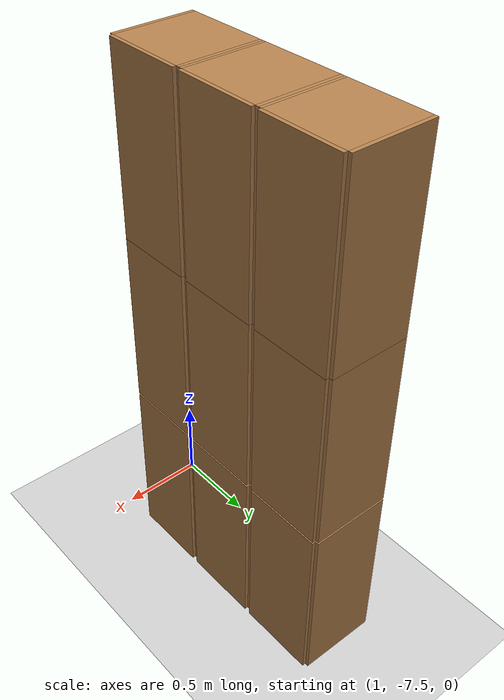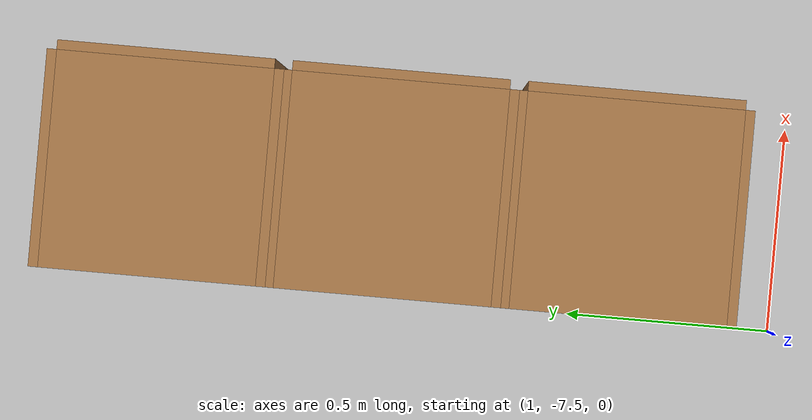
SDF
<sdf version="1.6">
 <world name="default">
  <model name="ground_plane">
   <static>1</static>
   <link name="link">
    <collision name="collision">
     <geometry><plane><normal>0 0 1</normal><size>100 100</size></plane></geometry>
     <surface>
      <contact><collide_bitmask>65535</collide_bitmask></contact>
      <friction><ode><mu>100</mu><mu2>50</mu2></ode></friction>
     </surface>
    </collision>
    <visual name="visual">
     <cast_shadows>0</cast_shadows>
     <geometry><plane><normal>0 0 1</normal><size>100 100</size></plane></geometry>
     <material>
      <script><uri>file://media/materials/scripts/gazebo.material</uri><name>Gazebo/Grey</name></script>
     </material>
    </visual>
   </link>
  </model>
  <model name="Locker18_clone_3_clone_clone_1">
   <model name="Locker18">
    <model name="Locker3">
     <model name="cabinet">
      <static>1</static>
      <link name="cabinet_bottom_plate">
       <inertial>
        <pose>0 0 -1 0 -0 0</pose>
        <inertia><ixx>2.05</ixx><ixy>0</ixy><ixz>0</ixz><iyy>2.05</iyy><iyz>0</iyz><izz>2.05</izz></inertia>
        <mass>25</mass>
       </inertial>
       <collision name="cabinet_bottom_plate_geom">
        <pose>0 0 0.01 0 -0 0</pose>
        <geometry><box><size>0.45 0.45 0.02</size></box></geometry>
       </collision>
       <visual name="cabinet_bottom_plate_geom_visual">
        <pose>0 0 0.01 0 -0 0</pose>
        <geometry><box><size>0.45 0.45 0.02</size></box></geometry>
        <material>
         <script><uri>file://media/materials/scripts/gazebo.material</uri><name>Gazebo/Wood</name></script>
        </material>
       </visual>
       <collision name="cabinet_bottom_plate_geom_cabinet_back_plate">
        <pose>0.235 0 0.51 0 -0 0</pose>
        <geometry><box><size>0.02 0.45 1.02</size></box></geometry>
       </collision>
       <visual name="cabinet_bottom_plate_geom_cabinet_back_plate_visual">
        <pose>0.235 0 0.51 0 -0 0</pose>
        <geometry><box><size>0.02 0.45 1.02</size></box></geometry>
        <material>
         <script><uri>file://media/materials/scripts/gazebo.material</uri><name>Gazebo/Wood</name></script>
        </material>
       </visual>
       <collision name="cabinet_bottom_plate_geom_cabinet_left_plate">
        <pose>0 0.235 0.51 0 -0 0</pose>
        <geometry><box><size>0.45 0.02 1.02</size></box></geometry>
       </collision>
       <visual name="cabinet_bottom_plate_geom_cabinet_left_plate_visual">
        <pose>0 0.235 0.51 0 -0 0</pose>
        <geometry><box><size>0.45 0.02 1.02</size></box></geometry>
        <material>
         <script><uri>file://media/materials/scripts/gazebo.material</uri><name>Gazebo/Wood</name></script>
        </material>
       </visual>
       <collision name="cabinet_bottom_plate_geom_cabinet_middle_plate">
        <pose>0 0 0.51 0 -0 0</pose>
        <geometry><box><size>0.45 0.45 0.02</size></box></geometry>
       </collision>
       <visual name="cabinet_bottom_plate_geom_cabinet_middle_plate_visual">
        <pose>0 0 0.51 0 -0 0</pose>
        <geometry><box><size>0.45 0.45 0.02</size></box></geometry>
        <material>
         <script><uri>file://media/materials/scripts/gazebo.material</uri><name>Gazebo/Wood</name></script>
        </material>
       </visual>
       <collision name="cabinet_bottom_plate_geom_cabinet_right_plate">
        <pose>0 -0.235 0.51 0 -0 0</pose>
        <geometry><box><size>0.45 0.02 1.02</size></box></geometry>
       </collision>
       <visual name="cabinet_bottom_plate_geom_cabinet_right_plate_visual">
        <pose>0 -0.235 0.51 0 -0 0</pose>
        <geometry><box><size>0.45 0.02 1.02</size></box></geometry>
        <material>
         <script><uri>file://media/materials/scripts/gazebo.material</uri><name>Gazebo/Wood</name></script>
        </material>
       </visual>
       <collision name="cabinet_bottom_plate_geom_cabinet_top_plate">
        <pose>0 0 1.01 0 -0 0</pose>
        <geometry><box><size>0.45 0.45 0.02</size></box></geometry>
       </collision>
       <visual name="cabinet_bottom_plate_geom_cabinet_top_plate_visual">
        <pose>0 0 1.01 0 -0 0</pose>
        <geometry><box><size>0.45 0.45 0.02</size></box></geometry>
        <material>
         <script><uri>file://media/materials/scripts/gazebo.material</uri><name>Gazebo/Wood</name></script>
        </material>
       </visual>
      </link>
      <pose>-0.676968 1.45758 0 0 -0 0</pose>
     </model>
     <model name="cabinet_clone">
      <static>1</static>
      <link name="cabinet_bottom_plate">
       <inertial>
        <pose>0 0 -1 0 -0 0</pose>
        <inertia><ixx>2.05</ixx><ixy>0</ixy><ixz>0</ixz><iyy>2.05</iyy><iyz>0</iyz><izz>2.05</izz></inertia>
        <mass>25</mass>
       </inertial>
       <collision name="cabinet_bottom_plate_geom">
        <pose>0 0 0.01 0 -0 0</pose>
        <geometry><box><size>0.45 0.45 0.02</size></box></geometry>
       </collision>
       <visual name="cabinet_bottom_plate_geom_visual">
        <pose>0 0 0.01 0 -0 0</pose>
        <geometry><box><size>0.45 0.45 0.02</size></box></geometry>
        <material>
         <script><uri>file://media/materials/scripts/gazebo.material</uri><name>Gazebo/Wood</name></script>
        </material>
       </visual>
       <collision name="cabinet_bottom_plate_geom_cabinet_back_plate">
        <pose>0.235 0 0.51 0 -0 0</pose>
        <geometry><box><size>0.02 0.45 1.02</size></box></geometry>
       </collision>
       <visual name="cabinet_bottom_plate_geom_cabinet_back_plate_visual">
        <pose>0.235 0 0.51 0 -0 0</pose>
        <geometry><box><size>0.02 0.45 1.02</size></box></geometry>
        <material>
         <script><uri>file://media/materials/scripts/gazebo.material</uri><name>Gazebo/Wood</name></script>
        </material>
       </visual>
       <collision name="cabinet_bottom_plate_geom_cabinet_left_plate">
        <pose>0 0.235 0.51 0 -0 0</pose>
        <geometry><box><size>0.45 0.02 1.02</size></box></geometry>
       </collision>
       <visual name="cabinet_bottom_plate_geom_cabinet_left_plate_visual">
        <pose>0 0.235 0.51 0 -0 0</pose>
        <geometry><box><size>0.45 0.02 1.02</size></box></geometry>
        <material>
         <script><uri>file://media/materials/scripts/gazebo.material</uri><name>Gazebo/Wood</name></script>
        </material>
       </visual>
       <collision name="cabinet_bottom_plate_geom_cabinet_middle_plate">
        <pose>0 0 0.51 0 -0 0</pose>
        <geometry><box><size>0.45 0.45 0.02</size></box></geometry>
       </collision>
       <visual name="cabinet_bottom_plate_geom_cabinet_middle_plate_visual">
        <pose>0 0 0.51 0 -0 0</pose>
        <geometry><box><size>0.45 0.45 0.02</size></box></geometry>
        <material>
         <script><uri>file://media/materials/scripts/gazebo.material</uri><name>Gazebo/Wood</name></script>
        </material>
       </visual>
       <collision name="cabinet_bottom_plate_geom_cabinet_right_plate">
        <pose>0 -0.235 0.51 0 -0 0</pose>
        <geometry><box><size>0.45 0.02 1.02</size></box></geometry>
       </collision>
       <visual name="cabinet_bottom_plate_geom_cabinet_right_plate_visual">
        <pose>0 -0.235 0.51 0 -0 0</pose>
        <geometry><box><size>0.45 0.02 1.02</size></box></geometry>
        <material>
         <script><uri>file://media/materials/scripts/gazebo.material</uri><name>Gazebo/Wood</name></script>
        </material>
       </visual>
       <collision name="cabinet_bottom_plate_geom_cabinet_top_plate">
        <pose>0 0 1.01 0 -0 0</pose>
        <geometry><box><size>0.45 0.45 0.02</size></box></geometry>
       </collision>
       <visual name="cabinet_bottom_plate_geom_cabinet_top_plate_visual">
        <pose>0 0 1.01 0 -0 0</pose>
        <geometry><box><size>0.45 0.45 0.02</size></box></geometry>
        <material>
         <script><uri>file://media/materials/scripts/gazebo.material</uri><name>Gazebo/Wood</name></script>
        </material>
       </visual>
      </link>
      <pose>-0.676968 0.970971 0 0 -0 0</pose>
     </model>
     <model name="cabinet_clone_0">
      <static>1</static>
      <link name="cabinet_bottom_plate">
       <inertial>
        <pose>0 0 -1 0 -0 0</pose>
        <inertia><ixx>2.05</ixx><ixy>0</ixy><ixz>0</ixz><iyy>2.05</iyy><iyz>0</iyz><izz>2.05</izz></inertia>
        <mass>25</mass>
       </inertial>
       <collision name="cabinet_bottom_plate_geom">
        <pose>0 0 0.01 0 -0 0</pose>
        <geometry><box><size>0.45 0.45 0.02</size></box></geometry>
       </collision>
       <visual name="cabinet_bottom_plate_geom_visual">
        <pose>0 0 0.01 0 -0 0</pose>
        <geometry><box><size>0.45 0.45 0.02</size></box></geometry>
        <material>
         <script><uri>file://media/materials/scripts/gazebo.material</uri><name>Gazebo/Wood</name></script>
        </material>
       </visual>
       <collision name="cabinet_bottom_plate_geom_cabinet_back_plate">
        <pose>0.235 0 0.51 0 -0 0</pose>
        <geometry><box><size>0.02 0.45 1.02</size></box></geometry>
       </collision>
       <visual name="cabinet_bottom_plate_geom_cabinet_back_plate_visual">
        <pose>0.235 0 0.51 0 -0 0</pose>
        <geometry><box><size>0.02 0.45 1.02</size></box></geometry>
        <material>
         <script><uri>file://media/materials/scripts/gazebo.material</uri><name>Gazebo/Wood</name></script>
        </material>
       </visual>
       <collision name="cabinet_bottom_plate_geom_cabinet_left_plate">
        <pose>0 0.235 0.51 0 -0 0</pose>
        <geometry><box><size>0.45 0.02 1.02</size></box></geometry>
       </collision>
       <visual name="cabinet_bottom_plate_geom_cabinet_left_plate_visual">
        <pose>0 0.235 0.51 0 -0 0</pose>
        <geometry><box><size>0.45 0.02 1.02</size></box></geometry>
        <material>
         <script><uri>file://media/materials/scripts/gazebo.material</uri><name>Gazebo/Wood</name></script>
        </material>
       </visual>
       <collision name="cabinet_bottom_plate_geom_cabinet_middle_plate">
        <pose>0 0 0.51 0 -0 0</pose>
        <geometry><box><size>0.45 0.45 0.02</size></box></geometry>
       </collision>
       <visual name="cabinet_bottom_plate_geom_cabinet_middle_plate_visual">
        <pose>0 0 0.51 0 -0 0</pose>
        <geometry><box><size>0.45 0.45 0.02</size></box></geometry>
        <material>
         <script><uri>file://media/materials/scripts/gazebo.material</uri><name>Gazebo/Wood</name></script>
        </material>
       </visual>
       <collision name="cabinet_bottom_plate_geom_cabinet_right_plate">
        <pose>0 -0.235 0.51 0 -0 0</pose>
        <geometry><box><size>0.45 0.02 1.02</size></box></geometry>
       </collision>
       <visual name="cabinet_bottom_plate_geom_cabinet_right_plate_visual">
        <pose>0 -0.235 0.51 0 -0 0</pose>
        <geometry><box><size>0.45 0.02 1.02</size></box></geometry>
        <material>
         <script><uri>file://media/materials/scripts/gazebo.material</uri><name>Gazebo/Wood</name></script>
        </material>
       </visual>
       <collision name="cabinet_bottom_plate_geom_cabinet_top_plate">
        <pose>0 0 1.01 0 -0 0</pose>
        <geometry><box><size>0.45 0.45 0.02</size></box></geometry>
       </collision>
       <visual name="cabinet_bottom_plate_geom_cabinet_top_plate_visual">
        <pose>0 0 1.01 0 -0 0</pose>
        <geometry><box><size>0.45 0.45 0.02</size></box></geometry>
        <material>
         <script><uri>file://media/materials/scripts/gazebo.material</uri><name>Gazebo/Wood</name></script>
        </material>
       </visual>
      </link>
      <pose>-0.676968 0.48391 0 0 -0 0</pose>
     </model>
     <static>0</static>
     <pose>0 3e-06 -1.02763 0 -0 0</pose>
    </model>
    <model name="Locker3_clone">
     <model name="cabinet">
      <static>1</static>
      <link name="cabinet_bottom_plate">
       <inertial>
        <pose>0 0 -1 0 -0 0</pose>
        <inertia><ixx>2.05</ixx><ixy>0</ixy><ixz>0</ixz><iyy>2.05</iyy><iyz>0</iyz><izz>2.05</izz></inertia>
        <mass>25</mass>
       </inertial>
       <collision name="cabinet_bottom_plate_geom">
        <pose>0 0 0.01 0 -0 0</pose>
        <geometry><box><size>0.45 0.45 0.02</size></box></geometry>
       </collision>
       <visual name="cabinet_bottom_plate_geom_visual">
        <pose>0 0 0.01 0 -0 0</pose>
        <geometry><box><size>0.45 0.45 0.02</size></box></geometry>
        <material>
         <script><uri>file://media/materials/scripts/gazebo.material</uri><name>Gazebo/Wood</name></script>
        </material>
       </visual>
       <collision name="cabinet_bottom_plate_geom_cabinet_back_plate">
        <pose>0.235 0 0.51 0 -0 0</pose>
        <geometry><box><size>0.02 0.45 1.02</size></box></geometry>
       </collision>
       <visual name="cabinet_bottom_plate_geom_cabinet_back_plate_visual">
        <pose>0.235 0 0.51 0 -0 0</pose>
        <geometry><box><size>0.02 0.45 1.02</size></box></geometry>
        <material>
         <script><uri>file://media/materials/scripts/gazebo.material</uri><name>Gazebo/Wood</name></script>
        </material>
       </visual>
       <collision name="cabinet_bottom_plate_geom_cabinet_left_plate">
        <pose>0 0.235 0.51 0 -0 0</pose>
        <geometry><box><size>0.45 0.02 1.02</size></box></geometry>
       </collision>
       <visual name="cabinet_bottom_plate_geom_cabinet_left_plate_visual">
        <pose>0 0.235 0.51 0 -0 0</pose>
        <geometry><box><size>0.45 0.02 1.02</size></box></geometry>
        <material>
         <script><uri>file://media/materials/scripts/gazebo.material</uri><name>Gazebo/Wood</name></script>
        </material>
       </visual>
       <collision name="cabinet_bottom_plate_geom_cabinet_middle_plate">
        <pose>0 0 0.51 0 -0 0</pose>
        <geometry><box><size>0.45 0.45 0.02</size></box></geometry>
       </collision>
       <visual name="cabinet_bottom_plate_geom_cabinet_middle_plate_visual">
        <pose>0 0 0.51 0 -0 0</pose>
        <geometry><box><size>0.45 0.45 0.02</size></box></geometry>
        <material>
         <script><uri>file://media/materials/scripts/gazebo.material</uri><name>Gazebo/Wood</name></script>
        </material>
       </visual>
       <collision name="cabinet_bottom_plate_geom_cabinet_right_plate">
        <pose>0 -0.235 0.51 0 -0 0</pose>
        <geometry><box><size>0.45 0.02 1.02</size></box></geometry>
       </collision>
       <visual name="cabinet_bottom_plate_geom_cabinet_right_plate_visual">
        <pose>0 -0.235 0.51 0 -0 0</pose>
        <geometry><box><size>0.45 0.02 1.02</size></box></geometry>
        <material>
         <script><uri>file://media/materials/scripts/gazebo.material</uri><name>Gazebo/Wood</name></script>
        </material>
       </visual>
       <collision name="cabinet_bottom_plate_geom_cabinet_top_plate">
        <pose>0 0 1.01 0 -0 0</pose>
        <geometry><box><size>0.45 0.45 0.02</size></box></geometry>
       </collision>
       <visual name="cabinet_bottom_plate_geom_cabinet_top_plate_visual">
        <pose>0 0 1.01 0 -0 0</pose>
        <geometry><box><size>0.45 0.45 0.02</size></box></geometry>
        <material>
         <script><uri>file://media/materials/scripts/gazebo.material</uri><name>Gazebo/Wood</name></script>
        </material>
       </visual>
      </link>
      <pose>-0.676968 1.45758 0 0 -0 0</pose>
     </model>
     <model name="cabinet_clone">
      <static>1</static>
      <link name="cabinet_bottom_plate">
       <inertial>
        <pose>0 0 -1 0 -0 0</pose>
        <inertia><ixx>2.05</ixx><ixy>0</ixy><ixz>0</ixz><iyy>2.05</iyy><iyz>0</iyz><izz>2.05</izz></inertia>
        <mass>25</mass>
       </inertial>
       <collision name="cabinet_bottom_plate_geom">
        <pose>0 0 0.01 0 -0 0</pose>
        <geometry><box><size>0.45 0.45 0.02</size></box></geometry>
       </collision>
       <visual name="cabinet_bottom_plate_geom_visual">
        <pose>0 0 0.01 0 -0 0</pose>
        <geometry><box><size>0.45 0.45 0.02</size></box></geometry>
        <material>
         <script><uri>file://media/materials/scripts/gazebo.material</uri><name>Gazebo/Wood</name></script>
        </material>
       </visual>
       <collision name="cabinet_bottom_plate_geom_cabinet_back_plate">
        <pose>0.235 0 0.51 0 -0 0</pose>
        <geometry><box><size>0.02 0.45 1.02</size></box></geometry>
       </collision>
       <visual name="cabinet_bottom_plate_geom_cabinet_back_plate_visual">
        <pose>0.235 0 0.51 0 -0 0</pose>
        <geometry><box><size>0.02 0.45 1.02</size></box></geometry>
        <material>
         <script><uri>file://media/materials/scripts/gazebo.material</uri><name>Gazebo/Wood</name></script>
        </material>
       </visual>
       <collision name="cabinet_bottom_plate_geom_cabinet_left_plate">
        <pose>0 0.235 0.51 0 -0 0</pose>
        <geometry><box><size>0.45 0.02 1.02</size></box></geometry>
       </collision>
       <visual name="cabinet_bottom_plate_geom_cabinet_left_plate_visual">
        <pose>0 0.235 0.51 0 -0 0</pose>
        <geometry><box><size>0.45 0.02 1.02</size></box></geometry>
        <material>
         <script><uri>file://media/materials/scripts/gazebo.material</uri><name>Gazebo/Wood</name></script>
        </material>
       </visual>
       <collision name="cabinet_bottom_plate_geom_cabinet_middle_plate">
        <pose>0 0 0.51 0 -0 0</pose>
        <geometry><box><size>0.45 0.45 0.02</size></box></geometry>
       </collision>
       <visual name="cabinet_bottom_plate_geom_cabinet_middle_plate_visual">
        <pose>0 0 0.51 0 -0 0</pose>
        <geometry><box><size>0.45 0.45 0.02</size></box></geometry>
        <material>
         <script><uri>file://media/materials/scripts/gazebo.material</uri><name>Gazebo/Wood</name></script>
        </material>
       </visual>
       <collision name="cabinet_bottom_plate_geom_cabinet_right_plate">
        <pose>0 -0.235 0.51 0 -0 0</pose>
        <geometry><box><size>0.45 0.02 1.02</size></box></geometry>
       </collision>
       <visual name="cabinet_bottom_plate_geom_cabinet_right_plate_visual">
        <pose>0 -0.235 0.51 0 -0 0</pose>
        <geometry><box><size>0.45 0.02 1.02</size></box></geometry>
        <material>
         <script><uri>file://media/materials/scripts/gazebo.material</uri><name>Gazebo/Wood</name></script>
        </material>
       </visual>
       <collision name="cabinet_bottom_plate_geom_cabinet_top_plate">
        <pose>0 0 1.01 0 -0 0</pose>
        <geometry><box><size>0.45 0.45 0.02</size></box></geometry>
       </collision>
       <visual name="cabinet_bottom_plate_geom_cabinet_top_plate_visual">
        <pose>0 0 1.01 0 -0 0</pose>
        <geometry><box><size>0.45 0.45 0.02</size></box></geometry>
        <material>
         <script><uri>file://media/materials/scripts/gazebo.material</uri><name>Gazebo/Wood</name></script>
        </material>
       </visual>
      </link>
      <pose>-0.676968 0.970971 0 0 -0 0</pose>
     </model>
     <model name="cabinet_clone_0">
      <static>1</static>
      <link name="cabinet_bottom_plate">
       <inertial>
        <pose>0 0 -1 0 -0 0</pose>
        <inertia><ixx>2.05</ixx><ixy>0</ixy><ixz>0</ixz><iyy>2.05</iyy><iyz>0</iyz><izz>2.05</izz></inertia>
        <mass>25</mass>
       </inertial>
       <collision name="cabinet_bottom_plate_geom">
        <pose>0 0 0.01 0 -0 0</pose>
        <geometry><box><size>0.45 0.45 0.02</size></box></geometry>
       </collision>
       <visual name="cabinet_bottom_plate_geom_visual">
        <pose>0 0 0.01 0 -0 0</pose>
        <geometry><box><size>0.45 0.45 0.02</size></box></geometry>
        <material>
         <script><uri>file://media/materials/scripts/gazebo.material</uri><name>Gazebo/Wood</name></script>
        </material>
       </visual>
       <collision name="cabinet_bottom_plate_geom_cabinet_back_plate">
        <pose>0.235 0 0.51 0 -0 0</pose>
        <geometry><box><size>0.02 0.45 1.02</size></box></geometry>
       </collision>
       <visual name="cabinet_bottom_plate_geom_cabinet_back_plate_visual">
        <pose>0.235 0 0.51 0 -0 0</pose>
        <geometry><box><size>0.02 0.45 1.02</size></box></geometry>
        <material>
         <script><uri>file://media/materials/scripts/gazebo.material</uri><name>Gazebo/Wood</name></script>
        </material>
       </visual>
       <collision name="cabinet_bottom_plate_geom_cabinet_left_plate">
        <pose>0 0.235 0.51 0 -0 0</pose>
        <geometry><box><size>0.45 0.02 1.02</size></box></geometry>
       </collision>
       <visual name="cabinet_bottom_plate_geom_cabinet_left_plate_visual">
        <pose>0 0.235 0.51 0 -0 0</pose>
        <geometry><box><size>0.45 0.02 1.02</size></box></geometry>
        <material>
         <script><uri>file://media/materials/scripts/gazebo.material</uri><name>Gazebo/Wood</name></script>
        </material>
       </visual>
       <collision name="cabinet_bottom_plate_geom_cabinet_middle_plate">
        <pose>0 0 0.51 0 -0 0</pose>
        <geometry><box><size>0.45 0.45 0.02</size></box></geometry>
       </collision>
       <visual name="cabinet_bottom_plate_geom_cabinet_middle_plate_visual">
        <pose>0 0 0.51 0 -0 0</pose>
        <geometry><box><size>0.45 0.45 0.02</size></box></geometry>
        <material>
         <script><uri>file://media/materials/scripts/gazebo.material</uri><name>Gazebo/Wood</name></script>
        </material>
       </visual>
       <collision name="cabinet_bottom_plate_geom_cabinet_right_plate">
        <pose>0 -0.235 0.51 0 -0 0</pose>
        <geometry><box><size>0.45 0.02 1.02</size></box></geometry>
       </collision>
       <visual name="cabinet_bottom_plate_geom_cabinet_right_plate_visual">
        <pose>0 -0.235 0.51 0 -0 0</pose>
        <geometry><box><size>0.45 0.02 1.02</size></box></geometry>
        <material>
         <script><uri>file://media/materials/scripts/gazebo.material</uri><name>Gazebo/Wood</name></script>
        </material>
       </visual>
       <collision name="cabinet_bottom_plate_geom_cabinet_top_plate">
        <pose>0 0 1.01 0 -0 0</pose>
        <geometry><box><size>0.45 0.45 0.02</size></box></geometry>
       </collision>
       <visual name="cabinet_bottom_plate_geom_cabinet_top_plate_visual">
        <pose>0 0 1.01 0 -0 0</pose>
        <geometry><box><size>0.45 0.45 0.02</size></box></geometry>
        <material>
         <script><uri>file://media/materials/scripts/gazebo.material</uri><name>Gazebo/Wood</name></script>
        </material>
       </visual>
      </link>
      <pose>-0.676968 0.48391 0 0 -0 0</pose>
     </model>
     <static>0</static>
     <pose>0 3e-06 0.003717 0 -0 0</pose>
    </model>
    <model name="Locker3_clone_clone">
     <model name="cabinet">
      <static>1</static>
      <link name="cabinet_bottom_plate">
       <inertial>
        <pose>0 0 -1 0 -0 0</pose>
        <inertia><ixx>2.05</ixx><ixy>0</ixy><ixz>0</ixz><iyy>2.05</iyy><iyz>0</iyz><izz>2.05</izz></inertia>
        <mass>25</mass>
       </inertial>
       <collision name="cabinet_bottom_plate_geom">
        <pose>0 0 0.01 0 -0 0</pose>
        <geometry><box><size>0.45 0.45 0.02</size></box></geometry>
       </collision>
       <visual name="cabinet_bottom_plate_geom_visual">
        <pose>0 0 0.01 0 -0 0</pose>
        <geometry><box><size>0.45 0.45 0.02</size></box></geometry>
        <material>
         <script><uri>file://media/materials/scripts/gazebo.material</uri><name>Gazebo/Wood</name></script>
        </material>
       </visual>
       <collision name="cabinet_bottom_plate_geom_cabinet_back_plate">
        <pose>0.235 0 0.51 0 -0 0</pose>
        <geometry><box><size>0.02 0.45 1.02</size></box></geometry>
       </collision>
       <visual name="cabinet_bottom_plate_geom_cabinet_back_plate_visual">
        <pose>0.235 0 0.51 0 -0 0</pose>
        <geometry><box><size>0.02 0.45 1.02</size></box></geometry>
        <material>
         <script><uri>file://media/materials/scripts/gazebo.material</uri><name>Gazebo/Wood</name></script>
        </material>
       </visual>
       <collision name="cabinet_bottom_plate_geom_cabinet_left_plate">
        <pose>0 0.235 0.51 0 -0 0</pose>
        <geometry><box><size>0.45 0.02 1.02</size></box></geometry>
       </collision>
       <visual name="cabinet_bottom_plate_geom_cabinet_left_plate_visual">
        <pose>0 0.235 0.51 0 -0 0</pose>
        <geometry><box><size>0.45 0.02 1.02</size></box></geometry>
        <material>
         <script><uri>file://media/materials/scripts/gazebo.material</uri><name>Gazebo/Wood</name></script>
        </material>
       </visual>
       <collision name="cabinet_bottom_plate_geom_cabinet_middle_plate">
        <pose>0 0 0.51 0 -0 0</pose>
        <geometry><box><size>0.45 0.45 0.02</size></box></geometry>
       </collision>
       <visual name="cabinet_bottom_plate_geom_cabinet_middle_plate_visual">
        <pose>0 0 0.51 0 -0 0</pose>
        <geometry><box><size>0.45 0.45 0.02</size></box></geometry>
        <material>
         <script><uri>file://media/materials/scripts/gazebo.material</uri><name>Gazebo/Wood</name></script>
        </material>
       </visual>
       <collision name="cabinet_bottom_plate_geom_cabinet_right_plate">
        <pose>0 -0.235 0.51 0 -0 0</pose>
        <geometry><box><size>0.45 0.02 1.02</size></box></geometry>
       </collision>
       <visual name="cabinet_bottom_plate_geom_cabinet_right_plate_visual">
        <pose>0 -0.235 0.51 0 -0 0</pose>
        <geometry><box><size>0.45 0.02 1.02</size></box></geometry>
        <material>
         <script><uri>file://media/materials/scripts/gazebo.material</uri><name>Gazebo/Wood</name></script>
        </material>
       </visual>
       <collision name="cabinet_bottom_plate_geom_cabinet_top_plate">
        <pose>0 0 1.01 0 -0 0</pose>
        <geometry><box><size>0.45 0.45 0.02</size></box></geometry>
       </collision>
       <visual name="cabinet_bottom_plate_geom_cabinet_top_plate_visual">
        <pose>0 0 1.01 0 -0 0</pose>
        <geometry><box><size>0.45 0.45 0.02</size></box></geometry>
        <material>
         <script><uri>file://media/materials/scripts/gazebo.material</uri><name>Gazebo/Wood</name></script>
        </material>
       </visual>
      </link>
      <pose>-0.676968 1.45758 0 0 -0 0</pose>
     </model>
     <model name="cabinet_clone">
      <static>1</static>
      <link name="cabinet_bottom_plate">
       <inertial>
        <pose>0 0 -1 0 -0 0</pose>
        <inertia><ixx>2.05</ixx><ixy>0</ixy><ixz>0</ixz><iyy>2.05</iyy><iyz>0</iyz><izz>2.05</izz></inertia>
        <mass>25</mass>
       </inertial>
       <collision name="cabinet_bottom_plate_geom">
        <pose>0 0 0.01 0 -0 0</pose>
        <geometry><box><size>0.45 0.45 0.02</size></box></geometry>
       </collision>
       <visual name="cabinet_bottom_plate_geom_visual">
        <pose>0 0 0.01 0 -0 0</pose>
        <geometry><box><size>0.45 0.45 0.02</size></box></geometry>
        <material>
         <script><uri>file://media/materials/scripts/gazebo.material</uri><name>Gazebo/Wood</name></script>
        </material>
       </visual>
       <collision name="cabinet_bottom_plate_geom_cabinet_back_plate">
        <pose>0.235 0 0.51 0 -0 0</pose>
        <geometry><box><size>0.02 0.45 1.02</size></box></geometry>
       </collision>
       <visual name="cabinet_bottom_plate_geom_cabinet_back_plate_visual">
        <pose>0.235 0 0.51 0 -0 0</pose>
        <geometry><box><size>0.02 0.45 1.02</size></box></geometry>
        <material>
         <script><uri>file://media/materials/scripts/gazebo.material</uri><name>Gazebo/Wood</name></script>
        </material>
       </visual>
       <collision name="cabinet_bottom_plate_geom_cabinet_left_plate">
        <pose>0 0.235 0.51 0 -0 0</pose>
        <geometry><box><size>0.45 0.02 1.02</size></box></geometry>
       </collision>
       <visual name="cabinet_bottom_plate_geom_cabinet_left_plate_visual">
        <pose>0 0.235 0.51 0 -0 0</pose>
        <geometry><box><size>0.45 0.02 1.02</size></box></geometry>
        <material>
         <script><uri>file://media/materials/scripts/gazebo.material</uri><name>Gazebo/Wood</name></script>
        </material>
       </visual>
       <collision name="cabinet_bottom_plate_geom_cabinet_middle_plate">
        <pose>0 0 0.51 0 -0 0</pose>
        <geometry><box><size>0.45 0.45 0.02</size></box></geometry>
       </collision>
       <visual name="cabinet_bottom_plate_geom_cabinet_middle_plate_visual">
        <pose>0 0 0.51 0 -0 0</pose>
        <geometry><box><size>0.45 0.45 0.02</size></box></geometry>
        <material>
         <script><uri>file://media/materials/scripts/gazebo.material</uri><name>Gazebo/Wood</name></script>
        </material>
       </visual>
       <collision name="cabinet_bottom_plate_geom_cabinet_right_plate">
        <pose>0 -0.235 0.51 0 -0 0</pose>
        <geometry><box><size>0.45 0.02 1.02</size></box></geometry>
       </collision>
       <visual name="cabinet_bottom_plate_geom_cabinet_right_plate_visual">
        <pose>0 -0.235 0.51 0 -0 0</pose>
        <geometry><box><size>0.45 0.02 1.02</size></box></geometry>
        <material>
         <script><uri>file://media/materials/scripts/gazebo.material</uri><name>Gazebo/Wood</name></script>
        </material>
       </visual>
       <collision name="cabinet_bottom_plate_geom_cabinet_top_plate">
        <pose>0 0 1.01 0 -0 0</pose>
        <geometry><box><size>0.45 0.45 0.02</size></box></geometry>
       </collision>
       <visual name="cabinet_bottom_plate_geom_cabinet_top_plate_visual">
        <pose>0 0 1.01 0 -0 0</pose>
        <geometry><box><size>0.45 0.45 0.02</size></box></geometry>
        <material>
         <script><uri>file://media/materials/scripts/gazebo.material</uri><name>Gazebo/Wood</name></script>
        </material>
       </visual>
      </link>
      <pose>-0.676968 0.970971 0 0 -0 0</pose>
     </model>
     <model name="cabinet_clone_0">
      <static>1</static>
      <link name="cabinet_bottom_plate">
       <inertial>
        <pose>0 0 -1 0 -0 0</pose>
        <inertia><ixx>2.05</ixx><ixy>0</ixy><ixz>0</ixz><iyy>2.05</iyy><iyz>0</iyz><izz>2.05</izz></inertia>
        <mass>25</mass>
       </inertial>
       <collision name="cabinet_bottom_plate_geom">
        <pose>0 0 0.01 0 -0 0</pose>
        <geometry><box><size>0.45 0.45 0.02</size></box></geometry>
       </collision>
       <visual name="cabinet_bottom_plate_geom_visual">
        <pose>0 0 0.01 0 -0 0</pose>
        <geometry><box><size>0.45 0.45 0.02</size></box></geometry>
        <material>
         <script><uri>file://media/materials/scripts/gazebo.material</uri><name>Gazebo/Wood</name></script>
        </material>
       </visual>
       <collision name="cabinet_bottom_plate_geom_cabinet_back_plate">
        <pose>0.235 0 0.51 0 -0 0</pose>
        <geometry><box><size>0.02 0.45 1.02</size></box></geometry>
       </collision>
       <visual name="cabinet_bottom_plate_geom_cabinet_back_plate_visual">
        <pose>0.235 0 0.51 0 -0 0</pose>
        <geometry><box><size>0.02 0.45 1.02</size></box></geometry>
        <material>
         <script><uri>file://media/materials/scripts/gazebo.material</uri><name>Gazebo/Wood</name></script>
        </material>
       </visual>
       <collision name="cabinet_bottom_plate_geom_cabinet_left_plate">
        <pose>0 0.235 0.51 0 -0 0</pose>
        <geometry><box><size>0.45 0.02 1.02</size></box></geometry>
       </collision>
       <visual name="cabinet_bottom_plate_geom_cabinet_left_plate_visual">
        <pose>0 0.235 0.51 0 -0 0</pose>
        <geometry><box><size>0.45 0.02 1.02</size></box></geometry>
        <material>
         <script><uri>file://media/materials/scripts/gazebo.material</uri><name>Gazebo/Wood</name></script>
        </material>
       </visual>
       <collision name="cabinet_bottom_plate_geom_cabinet_middle_plate">
        <pose>0 0 0.51 0 -0 0</pose>
        <geometry><box><size>0.45 0.45 0.02</size></box></geometry>
       </collision>
       <visual name="cabinet_bottom_plate_geom_cabinet_middle_plate_visual">
        <pose>0 0 0.51 0 -0 0</pose>
        <geometry><box><size>0.45 0.45 0.02</size></box></geometry>
        <material>
         <script><uri>file://media/materials/scripts/gazebo.material</uri><name>Gazebo/Wood</name></script>
        </material>
       </visual>
       <collision name="cabinet_bottom_plate_geom_cabinet_right_plate">
        <pose>0 -0.235 0.51 0 -0 0</pose>
        <geometry><box><size>0.45 0.02 1.02</size></box></geometry>
       </collision>
       <visual name="cabinet_bottom_plate_geom_cabinet_right_plate_visual">
        <pose>0 -0.235 0.51 0 -0 0</pose>
        <geometry><box><size>0.45 0.02 1.02</size></box></geometry>
        <material>
         <script><uri>file://media/materials/scripts/gazebo.material</uri><name>Gazebo/Wood</name></script>
        </material>
       </visual>
       <collision name="cabinet_bottom_plate_geom_cabinet_top_plate">
        <pose>0 0 1.01 0 -0 0</pose>
        <geometry><box><size>0.45 0.45 0.02</size></box></geometry>
       </collision>
       <visual name="cabinet_bottom_plate_geom_cabinet_top_plate_visual">
        <pose>0 0 1.01 0 -0 0</pose>
        <geometry><box><size>0.45 0.45 0.02</size></box></geometry>
        <material>
         <script><uri>file://media/materials/scripts/gazebo.material</uri><name>Gazebo/Wood</name></script>
        </material>
       </visual>
      </link>
      <pose>-0.676968 0.48391 0 0 -0 0</pose>
     </model>
     <static>0</static>
     <pose>0 3e-06 1.02391 0 -0 0</pose>
    </model>
    <static>0</static>
    <pose>-0 4e-06 4e-06 0 -0 0</pose>
   </model>
   <static>0</static>
   <pose>1.94604 -7.53384 1.08672 0 -0 0</pose>
  </model>
 </world>
</sdf>
